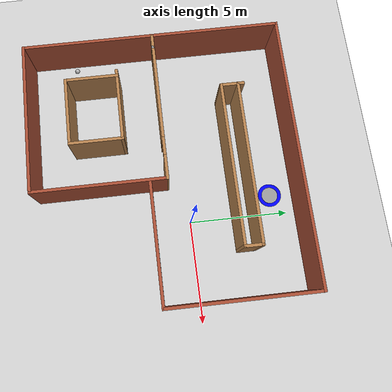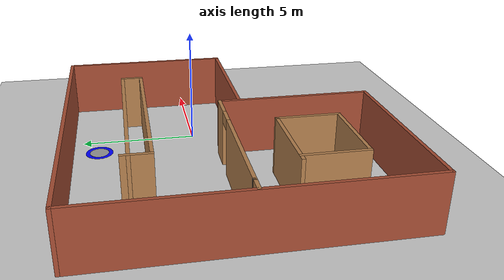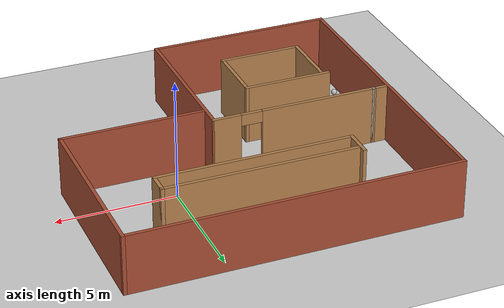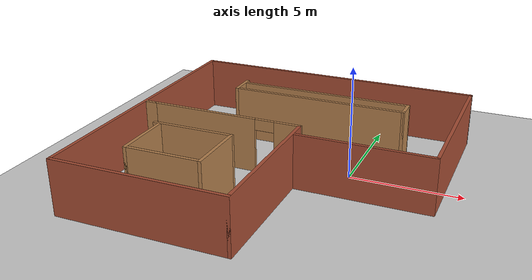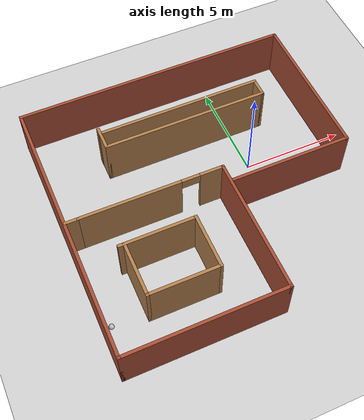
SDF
<sdf version="1.6">
 <world name="default">
  <light name="sun" type="directional">
   <pose>0 0 10 0 -0 0</pose>
   <diffuse>0.8 0.8 0.8 1</diffuse>
   <specular>0.2 0.2 0.2 1</specular>
   <attenuation>
    <range>1000</range>
    <constant>0.9</constant>
    <linear>0.01</linear>
    <quadratic>0.001</quadratic>
   </attenuation>
   <direction>-0.5 0.1 -0.9</direction>
  </light>
  <model name="circular_ring_0">
   <pose>-1 4.3 0 0 0 0</pose>
   <static>true</static>
   <link name="link">
    <visual name="visual">
     <geometry><cylinder><radius>0.6</radius><length>0.001</length></cylinder></geometry>
     <material><ambient>0 0 1 1</ambient><diffuse>0 0 1 1</diffuse></material>
    </visual>
    <collision name="collision">
     <geometry><cylinder><radius>0.8</radius><length>0.001</length></cylinder></geometry>
    </collision>
   </link>
  </model>
  <model name="circular_ring_1">
   <pose>-1 4.3 0.001 0 0 0</pose>
   <static>true</static>
   <link name="link">
    <visual name="visual">
     <geometry><cylinder><radius>0.42</radius><length>0.002</length></cylinder></geometry>
     <material>
      <script><uri>file://media/materials/scripts/gazebo.material</uri><name>Gazebo/Grey</name></script>
     </material>
    </visual>
    <collision name="collision">
     <geometry><cylinder><radius>0.56</radius><length>0.002</length></cylinder></geometry>
    </collision>
   </link>
  </model>
  <model name="ground_plane">
   <static>1</static>
   <link name="link">
    <collision name="collision">
     <geometry><plane><normal>0 0 1</normal><size>100 100</size></plane></geometry>
     <surface><friction><ode><mu>100</mu><mu2>50</mu2></ode></friction></surface>
    </collision>
    <visual name="visual">
     <cast_shadows>0</cast_shadows>
     <geometry><plane><normal>0 0 1</normal><size>100 100</size></plane></geometry>
     <material>
      <script><uri>file://media/materials/scripts/gazebo.material</uri><name>Gazebo/Grey</name></script>
     </material>
    </visual>
   </link>
  </model>
  <gravity>0 0 -9.8</gravity>
  <magnetic_field>6e-06 2.3e-05 -4.2e-05</magnetic_field>
  <atmosphere type="adiabatic"/>
  <physics name="default_physics" default="0" type="ode">
   <max_step_size>0.001</max_step_size>
   <real_time_factor>1</real_time_factor>
   <real_time_update_rate>1000</real_time_update_rate>
  </physics>
  <scene><ambient>0.4 0.4 0.4 1</ambient><background>0.7 0.7 0.7 1</background><shadows>1</shadows></scene>
  <spherical_coordinates>
   <surface_model>EARTH_WGS84</surface_model>
   <latitude_deg>0</latitude_deg>
   <longitude_deg>0</longitude_deg>
   <elevation>0</elevation>
   <heading_deg>0</heading_deg>
  </spherical_coordinates>
  <model name="room1">
   <pose>-2.73 -1.05 0 0 -0 0</pose>
   <link name="Wall_0">
    <collision name="Wall_0_Collision">
     <geometry><box><size>6 0.15 2.5</size></box></geometry>
     <pose>0 0 1.25 0 -0 0</pose>
    </collision>
    <visual name="Wall_0_Visual">
     <pose>0 0 1.25 0 -0 0</pose>
     <geometry><box><size>6 0.15 2.5</size></box></geometry>
     <material>
      <script><uri>file://media/materials/scripts/gazebo.material</uri><name>Gazebo/Bricks</name></script>
      <ambient>1 1 1 1</ambient>
     </material>
     <meta><layer>0</layer></meta>
    </visual>
    <pose>3.875 -0.8 0 0 -0 0</pose>
   </link>
   <link name="Wall_1">
    <collision name="Wall_1_Collision">
     <geometry><box><size>7.5 0.15 2.5</size></box></geometry>
     <pose>0 0 1.25 0 -0 0</pose>
    </collision>
    <visual name="Wall_1_Visual">
     <pose>0 0 1.25 0 -0 0</pose>
     <geometry><box><size>7.5 0.15 2.5</size></box></geometry>
     <material>
      <script><uri>file://media/materials/scripts/gazebo.material</uri><name>Gazebo/Bricks</name></script>
      <ambient>1 1 1 1</ambient>
     </material>
     <meta><layer>0</layer></meta>
    </visual>
    <pose>6.8 2.875 0 0 -0 1.5708</pose>
   </link>
   <link name="Wall_10">
    <collision name="Wall_10_Collision">
     <geometry><box><size>1.25 0.15 2.5</size></box></geometry>
     <pose>0 0 1.25 0 -0 0</pose>
    </collision>
    <visual name="Wall_10_Visual">
     <pose>0 0 1.25 0 -0 0</pose>
     <geometry><box><size>1.25 0.15 2.5</size></box></geometry>
     <material>
      <script><uri>file://media/materials/scripts/gazebo.material</uri><name>Gazebo/Wood</name></script>
      <ambient>1 1 1 1</ambient>
     </material>
     <meta><layer>0</layer></meta>
    </visual>
    <pose>-3.67001 3.80845 0 0 0 -1.5708</pose>
   </link>
   <link name="Wall_11">
    <collision name="Wall_11_Collision">
     <geometry><box><size>8.25 0.15 2.5</size></box></geometry>
     <pose>0 0 1.25 0 -0 0</pose>
    </collision>
    <visual name="Wall_11_Visual">
     <pose>0 0 1.25 0 -0 0</pose>
     <geometry><box><size>8.25 0.15 2.5</size></box></geometry>
     <material>
      <script><uri>file://media/materials/scripts/gazebo.material</uri><name>Gazebo/Wood</name></script>
      <ambient>1 1 1 1</ambient>
     </material>
     <meta><layer>0</layer></meta>
    </visual>
    <pose>0.379989 3.25845 0 0 -0 0</pose>
   </link>
   <link name="Wall_12">
    <collision name="Wall_12_Collision">
     <geometry><box><size>1 0.15 2.5</size></box></geometry>
     <pose>0 0 1.25 0 -0 0</pose>
    </collision>
    <visual name="Wall_12_Visual">
     <pose>0 0 1.25 0 -0 0</pose>
     <geometry><box><size>1 0.15 2.5</size></box></geometry>
     <material>
      <script><uri>file://media/materials/scripts/gazebo.material</uri><name>Gazebo/Wood</name></script>
      <ambient>1 1 1 1</ambient>
     </material>
     <meta><layer>0</layer></meta>
    </visual>
    <pose>4.42999 3.68345 0 0 -0 1.5708</pose>
   </link>
   <link name="Wall_13">
    <collision name="Wall_13_Collision">
     <geometry><box><size>8.25 0.15 2.5</size></box></geometry>
     <pose>0 0 1.25 0 -0 0</pose>
    </collision>
    <visual name="Wall_13_Visual">
     <pose>0 0 1.25 0 -0 0</pose>
     <geometry><box><size>8.25 0.15 2.5</size></box></geometry>
     <material>
      <script><uri>file://media/materials/scripts/gazebo.material</uri><name>Gazebo/Wood</name></script>
      <ambient>1 1 1 1</ambient>
     </material>
     <meta><layer>0</layer></meta>
    </visual>
    <pose>0.379989 4.10845 0 0 -0 3.14159</pose>
   </link>
   <link name="Wall_16">
    <collision name="Wall_16_Collision">
     <geometry><box><size>2.75 0.15 2.5</size></box></geometry>
     <pose>0 0 1.25 0 -0 0</pose>
    </collision>
    <visual name="Wall_16_Visual">
     <pose>0 0 1.25 0 -0 0</pose>
     <geometry><box><size>2.75 0.15 2.5</size></box></geometry>
     <material>
      <script><uri>file://media/materials/scripts/gazebo.material</uri><name>Gazebo/Wood</name></script>
      <ambient>1 1 1 1</ambient>
     </material>
     <meta><layer>0</layer></meta>
    </visual>
    <pose>-4.77196 -3.2131 0 0 0 -1.5708</pose>
   </link>
   <link name="Wall_17">
    <collision name="Wall_17_Collision">
     <geometry><box><size>3.5 0.15 2.5</size></box></geometry>
     <pose>0 0 1.25 0 -0 0</pose>
    </collision>
    <visual name="Wall_17_Visual">
     <pose>0 0 1.25 0 -0 0</pose>
     <geometry><box><size>3.5 0.15 2.5</size></box></geometry>
     <material>
      <script><uri>file://media/materials/scripts/gazebo.material</uri><name>Gazebo/Wood</name></script>
      <ambient>1 1 1 1</ambient>
     </material>
     <meta><layer>0</layer></meta>
    </visual>
    <pose>-3.09696 -4.5131 0 0 -0 0</pose>
   </link>
   <link name="Wall_18">
    <collision name="Wall_18_Collision">
     <geometry><box><size>2.75 0.15 2.5</size></box></geometry>
     <pose>0 0 1.25 0 -0 0</pose>
    </collision>
    <visual name="Wall_18_Visual">
     <pose>0 0 1.25 0 -0 0</pose>
     <geometry><box><size>2.75 0.15 2.5</size></box></geometry>
     <material>
      <script><uri>file://media/materials/scripts/gazebo.material</uri><name>Gazebo/Wood</name></script>
      <ambient>1 1 1 1</ambient>
     </material>
     <meta><layer>0</layer></meta>
    </visual>
    <pose>-1.42196 -3.2131 0 0 -0 1.5708</pose>
   </link>
   <link name="Wall_19">
    <collision name="Wall_19_Collision">
     <geometry><box><size>3.75 0.15 2.5</size></box></geometry>
     <pose>0 0 1.25 0 -0 0</pose>
    </collision>
    <visual name="Wall_19_Visual">
     <pose>0 0 1.25 0 -0 0</pose>
     <geometry><box><size>3.75 0.15 2.5</size></box></geometry>
     <material>
      <script><uri>file://media/materials/scripts/gazebo.material</uri><name>Gazebo/Wood</name></script>
      <ambient>1 1 1 1</ambient>
     </material>
     <meta><layer>0</layer></meta>
    </visual>
    <pose>-3.22196 -1.9131 0 0 -0 3.14159</pose>
   </link>
   <link name="Wall_2">
    <collision name="Wall_2_Collision">
     <geometry><box><size>13.75 0.15 2.5</size></box></geometry>
     <pose>0 0 1.25 0 -0 0</pose>
    </collision>
    <visual name="Wall_2_Visual">
     <pose>0 0 1.25 0 -0 0</pose>
     <geometry><box><size>13.75 0.15 2.5</size></box></geometry>
     <material>
      <script><uri>file://media/materials/scripts/gazebo.material</uri><name>Gazebo/Bricks</name></script>
      <ambient>1 1 1 1</ambient>
     </material>
     <meta><layer>0</layer></meta>
    </visual>
    <pose>0 6.55 0 0 -0 3.14159</pose>
   </link>
   <link name="Wall_3">
    <collision name="Wall_3_Collision">
     <geometry><box><size>13.25 0.15 2.5</size></box></geometry>
     <pose>0 0 1.25 0 -0 0</pose>
    </collision>
    <visual name="Wall_3_Visual">
     <pose>0 0 1.25 0 -0 0</pose>
     <geometry><box><size>13.25 0.15 2.5</size></box></geometry>
     <material>
      <script><uri>file://media/materials/scripts/gazebo.material</uri><name>Gazebo/Bricks</name></script>
      <ambient>1 1 1 1</ambient>
     </material>
     <meta><layer>0</layer></meta>
    </visual>
    <pose>-6.8 0 0 0 0 -1.5708</pose>
   </link>
   <link name="Wall_4">
    <collision name="Wall_4_Collision">
     <geometry><box><size>7.75 0.15 2.5</size></box></geometry>
     <pose>0 0 1.25 0 -0 0</pose>
    </collision>
    <visual name="Wall_4_Visual">
     <pose>0 0 1.25 0 -0 0</pose>
     <geometry><box><size>7.75 0.15 2.5</size></box></geometry>
     <material>
      <script><uri>file://media/materials/scripts/gazebo.material</uri><name>Gazebo/Bricks</name></script>
      <ambient>1 1 1 1</ambient>
     </material>
     <meta><layer>0</layer></meta>
    </visual>
    <pose>-3 -6.55 0 0 -0 0</pose>
   </link>
   <link name="Wall_5">
    <collision name="Wall_5_Collision">
     <geometry><box><size>6.75 0.15 2.5</size></box></geometry>
     <pose>0 0 1.25 0 -0 0</pose>
    </collision>
    <visual name="Wall_5_Visual">
     <pose>0 0 1.25 0 -0 0</pose>
     <geometry><box><size>6.75 0.15 2.5</size></box></geometry>
     <material>
      <script><uri>file://media/materials/scripts/gazebo.material</uri><name>Gazebo/Bricks</name></script>
      <ambient>1 1 1 1</ambient>
     </material>
     <meta><layer>0</layer></meta>
    </visual>
    <pose>0.8 -3.25 0 0 -0 1.5708</pose>
   </link>
   <link name="Wall_6">
    <pose>-2.67763 0.061278 0 0 -0 3.13835</pose>
    <visual name="Wall_6_Visual_0">
     <pose>-2.93627 0 1.25 0 -0 0</pose>
     <geometry><box><size>1.23276 0.15 2.5</size></box></geometry>
     <material>
      <script><uri>file://media/materials/scripts/gazebo.material</uri><name>Gazebo/Wood</name></script>
      <ambient>1 1 1 1</ambient>
     </material>
     <meta><layer>0</layer></meta>
    </visual>
    <collision name="Wall_6_Collision_0">
     <geometry><box><size>1.23276 0.15 2.5</size></box></geometry>
     <pose>-2.93627 0 1.25 0 -0 0</pose>
    </collision>
    <visual name="Wall_6_Visual_1">
     <pose>1.06638 0 1.25 0 -0 0</pose>
     <geometry><box><size>4.97254 0.15 2.5</size></box></geometry>
     <material>
      <script><uri>file://media/materials/scripts/gazebo.material</uri><name>Gazebo/Wood</name></script>
      <ambient>1 1 1 1</ambient>
     </material>
     <meta><layer>0</layer></meta>
    </visual>
    <collision name="Wall_6_Collision_1">
     <geometry><box><size>4.97254 0.15 2.5</size></box></geometry>
     <pose>1.06638 0 1.25 0 -0 0</pose>
    </collision>
    <visual name="Wall_6_Visual_2">
     <pose>-1.86989 0 2.25 0 -0 0</pose>
     <geometry><box><size>0.9 0.15 0.5</size></box></geometry>
     <material>
      <script><uri>file://media/materials/scripts/gazebo.material</uri><name>Gazebo/Wood</name></script>
      <ambient>1 1 1 1</ambient>
     </material>
     <meta><layer>0</layer></meta>
    </visual>
    <collision name="Wall_6_Collision_2">
     <geometry><box><size>0.9 0.15 0.5</size></box></geometry>
     <pose>-1.86989 0 2.25 0 -0 0</pose>
    </collision>
   </link>
   <link name="Wall_7">
    <collision name="Wall_7_Collision">
     <geometry><box><size>0.15 0.15 2.5</size></box></geometry>
     <pose>0 0 1.25 0 -0 0</pose>
    </collision>
    <visual name="Wall_7_Visual">
     <pose>0 0 1.25 0 -0 0</pose>
     <geometry><box><size>0.15 0.15 2.5</size></box></geometry>
     <material>
      <script><uri>file://media/materials/scripts/gazebo.material</uri><name>Gazebo/Grey</name></script>
      <ambient>1 1 1 1</ambient>
     </material>
     <meta><layer>0</layer></meta>
    </visual>
    <pose>-6.15527 0.072556 0 0 -0 0</pose>
   </link>
   <link name="Wall_8">
    <collision name="Wall_8_Collision">
     <geometry><box><size>0.75 0.15 2.5</size></box></geometry>
     <pose>0 0 1.25 0 -0 0</pose>
    </collision>
    <visual name="Wall_8_Visual">
     <pose>0 0 1.25 0 -0 0</pose>
     <geometry><box><size>0.75 0.15 2.5</size></box></geometry>
     <material>
      <script><uri>file://media/materials/scripts/gazebo.material</uri><name>Gazebo/Wood</name></script>
      <ambient>1 1 1 1</ambient>
     </material>
     <meta><layer>0</layer></meta>
    </visual>
    <pose>-6.45151 0.072556 0 0 -0 3.14159</pose>
   </link>
   <static>1</static>
  </model>
  <model name="frc2016_ball">
   <pose>-9.15499 -5.24746 0.127 0 -0 0</pose>
   <link name="link">
    <inertial>
     <mass>0.213</mass>
     <inertia>
      <ixx>0.00322667</ixx>
      <ixy>0</ixy>
      <ixz>0</ixz>
      <iyy>0.00322667</iyy>
      <iyz>0</iyz>
      <izz>0.00322667</izz>
     </inertia>
    </inertial>
    <visual name="visual"><geometry><sphere><radius>0.127</radius></sphere></geometry></visual>
    <collision name="collision">
     <geometry><sphere><radius>0.127</radius></sphere></geometry>
     <surface>
      <bounce><restitution_coefficient>0.15937</restitution_coefficient><threshold>0</threshold></bounce>
      <contact><ode><max_vel>100</max_vel><min_depth>0.001</min_depth></ode></contact>
     </surface>
    </collision>
   </link>
  </model>
 </world>
</sdf>
